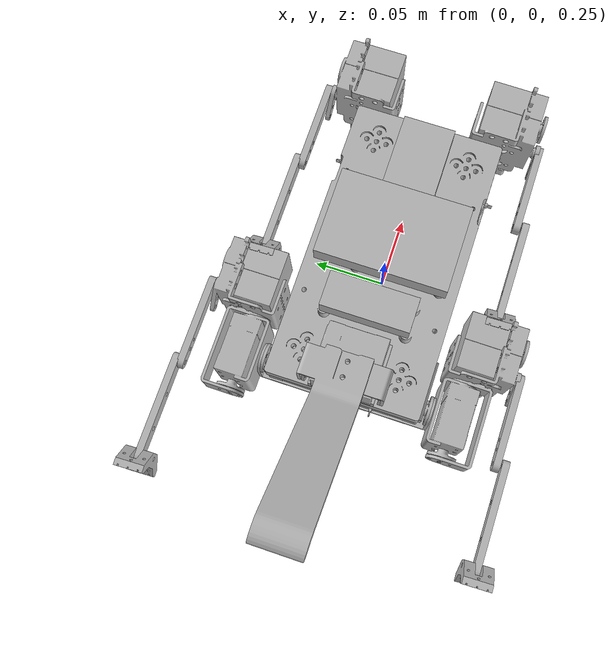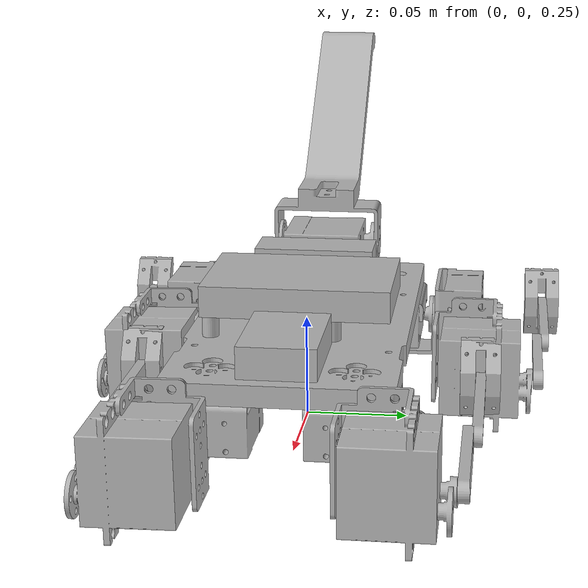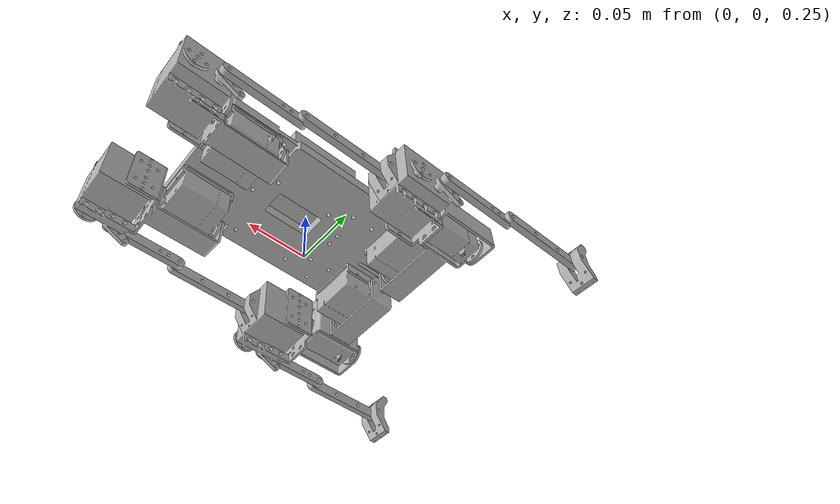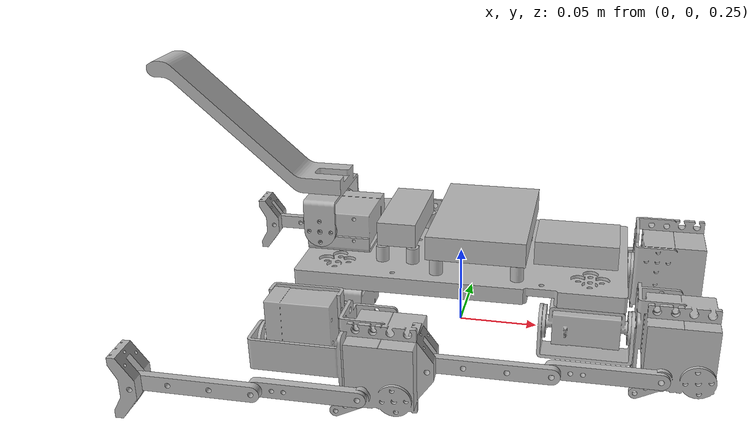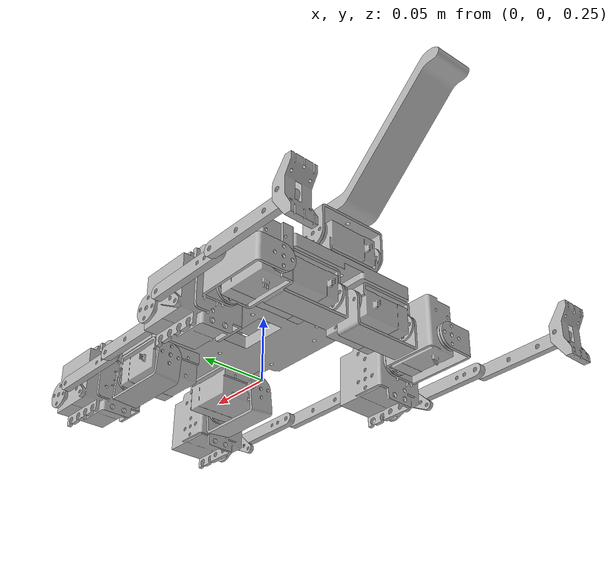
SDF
<sdf version='1.6'>
  <model name='stuart'>
    <link name='chassis'>
      <pose frame=''>0 0 0.2 0 -0 0</pose>
      <inertial>
        <pose frame=''>-0.002934 -0.0002 -0.001587 0 -0 0</pose>
        <mass>20.6436</mass>
        <inertia>
          <ixx>0.444602</ixx>
          <ixy>8.39044e-05</ixy>
          <ixz>0.0201047</ixz>
          <iyy>1.67587</iyy>
          <iyz>-4.00007</iyz>
          <izz>1.71585</izz>
        </inertia>
      </inertial>
      <collision name='chassis_collision'>
        <pose frame=''>0 0 0 0 -0 0</pose>
        <geometry>
          <box>
            <size>0.2 0.105 0.01</size>
          </box>
        </geometry>
      </collision>
      <collision name='chassis_fixed_joint_lump__motorFL1_collision_1'>
        <pose frame=''>0.0808 0.0388 -0.0203 0 -0 0</pose>
        <geometry>
          <box>
            <size>0.04 0.04 0.02</size>
          </box>
        </geometry>
      </collision>
      <collision name='chassis_fixed_joint_lump__motorFR1_collision_2'>
        <pose frame=''>0.0808 -0.0388 -0.0203 0 -0 0</pose>
        <geometry>
          <box>
            <size>0.04 0.04 0.02</size>
          </box>
        </geometry>
      </collision>
      <collision name='chassis_fixed_joint_lump__motorRL1_collision_3'>
        <pose frame=''>-0.0792 0.0308 -0.0203 0 -0 0</pose>
        <geometry>
          <box>
            <size>0.04 0.04 0.02</size>
          </box>
        </geometry>
      </collision>
      <collision name='chassis_fixed_joint_lump__motorRR1_collision_4'>
        <pose frame=''>-0.0792 -0.0308 -0.0203 0 -0 0</pose>
        <geometry>
          <box>
            <size>0.04 0.04 0.02</size>
          </box>
        </geometry>
      </collision>
      <collision name='chassis_fixed_joint_lump__tailmotor_collision_5'>
        <pose frame=''>-0.082 -0.0018 0.0156 0 -0 0</pose>
        <geometry>
          <box>
            <size>0.06 0.06 0.06</size>
          </box>
        </geometry>
      </collision>
      <collision name='chassis_fixed_joint_lump__imu_collision_6'>
        <pose frame=''>0.07335 0 0.0105 0 -0 0</pose>
        <geometry>
          <box>
            <size>0.051 0.036 0.015</size>
          </box>
        </geometry>
        <surface>
          <contact>
            <ode/>
          </contact>
          <friction>
            <ode/>
          </friction>
        </surface>
      </collision>
      <collision name='chassis_fixed_joint_lump__pi_collision_7'>
        <pose frame=''>0.015 0 0.0205 0 -0 0</pose>
        <geometry>
          <box>
            <size>0.06 0.09 0.015</size>
          </box>
        </geometry>
      </collision>
      <collision name='chassis_fixed_joint_lump__servodriver_collision_8'>
        <pose frame=''>-0.036 0 0.0205 0 -0 0</pose>
        <geometry>
          <box>
            <size>0.024 0.06 0.015</size>
          </box>
        </geometry>
      </collision>
      <visual name='chassis_visual'>
        <pose frame=''>0 0 0 0 -0 0</pose>
        <geometry>
          <mesh>
            <scale>0.001 0.001 0.001</scale>
            <uri>model://stuart_urdf/meshes/chassis2.stl</uri>
          </mesh>
        </geometry>
      </visual>
      <visual name='chassis_fixed_joint_lump__motorFL1_visual_1'>
        <pose frame=''>0.0808 0.0388 -0.0203 0 -0 0</pose>
        <geometry>
          <mesh>
            <scale>0.001 0.001 0.001</scale>
            <uri>model://stuart_urdf/meshes/frontleftrollmotor.stl</uri>
          </mesh>
        </geometry>
      </visual>
      <visual name='chassis_fixed_joint_lump__motorFR1_visual_2'>
        <pose frame=''>0.0808 -0.0388 -0.0203 0 -0 0</pose>
        <geometry>
          <mesh>
            <scale>0.001 0.001 0.001</scale>
            <uri>model://stuart_urdf/meshes/frontrightrollmotor.stl</uri>
          </mesh>
        </geometry>
      </visual>
      <visual name='chassis_fixed_joint_lump__motorRL1_visual_3'>
        <pose frame=''>-0.0792 0.0308 -0.0203 0 -0 0</pose>
        <geometry>
          <mesh>
            <scale>0.001 0.001 0.001</scale>
            <uri>model://stuart_urdf/meshes/rearlefthipmotor.stl</uri>
          </mesh>
        </geometry>
      </visual>
      <visual name='chassis_fixed_joint_lump__motorRR1_visual_4'>
        <pose frame=''>-0.0792 -0.0308 -0.0203 0 -0 0</pose>
        <geometry>
          <mesh>
            <scale>0.001 0.001 0.001</scale>
            <uri>model://stuart_urdf/meshes/rearrighthipmotor.stl</uri>
          </mesh>
        </geometry>
      </visual>
      <visual name='chassis_fixed_joint_lump__tailmotor_visual_5'>
        <pose frame=''>-0.082 -0.0018 0.0156 0 -0 0</pose>
        <geometry>
          <mesh>
            <scale>0.001 0.001 0.001</scale>
            <uri>model://stuart_urdf/meshes/tailmotor.stl</uri>
          </mesh>
        </geometry>
      </visual>
      <visual name='chassis_fixed_joint_lump__imu_visual_6'>
        <pose frame=''>0.07335 0 0.0105 0 -0 0</pose>
        <geometry>
          <box>
            <size>0.051 0.036 0.015</size>
          </box>
        </geometry>
        <material>
          <script>
            <uri>__default__</uri>
            <name>__default__</name>
          </script>
        </material>
      </visual>
      <visual name='chassis_fixed_joint_lump__pi_visual_7'>
        <pose frame=''>0.015 0 0.0205 0 -0 0</pose>
        <geometry>
          <box>
            <size>0.06 0.09 0.015</size>
          </box>
        </geometry>
      </visual>
      <visual name='chassis_fixed_joint_lump__servodriver_visual_8'>
        <pose frame=''>-0.036 0 0.0205 0 -0 0</pose>
        <geometry>
          <box>
            <size>0.024 0.06 0.015</size>
          </box>
        </geometry>
      </visual>
      <gravity>1</gravity>
      <velocity_decay/>
      <sensor name='imu' type='imu'>
        <always_on>1</always_on>
        <update_rate>500</update_rate>
        <visualize>1</visualize>
        <topic>__default_topic__</topic>
        <imu>
          <angular_velocity/>
          <linear_acceleration/>
        </imu>
        <pose frame=''>0.07335 0 0.0105 0 -0 0</pose>
      </sensor>
    </link>
    <link name='motorFL2'>
      <pose frame=''>0.1208 0.0422 0.1776 0 -0 0</pose>
      <inertial>
        <pose frame=''>0 0 0 0 -0 0</pose>
        <mass>20.145</mass>
        <inertia>
          <ixx>0.0733489</ixx>
          <ixy>0.00030338</ixy>
          <ixz>0.00191822</ixz>
          <iyy>0.250685</iyy>
          <iyz>-7.5402e-05</iyz>
          <izz>0.254469</izz>
        </inertia>
      </inertial>
      <collision name='motorFL2_collision'>
        <pose frame=''>0 0.0122 -0.0023 0 -0 0</pose>
        <geometry>
          <box>
            <size>0.07 0.04 0.04</size>
          </box>
        </geometry>
      </collision>
      <visual name='motorFL2_visual'>
        <pose frame=''>0 0.0122 -0.0023 0 -0 0</pose>
        <geometry>
          <mesh>
            <scale>0.001 0.001 0.001</scale>
            <uri>model://stuart_urdf/meshes/frontleftpitchmotor.stl</uri>
          </mesh>
        </geometry>
      </visual>
    </link>
    <joint name='motorFL1_motorFL2' type='revolute'>
      <child>motorFL2</child>
      <parent>chassis</parent>
      <axis>
        <xyz>1 0 0</xyz>
        <limit>
          <lower>-3.14</lower>
          <upper>3.14</upper>
          <effort>100</effort>
          <velocity>100</velocity>
        </limit>
        <dynamics>
          <damping>0</damping>
          <friction>0</friction>
          <spring_reference>0</spring_reference>
          <spring_stiffness>0</spring_stiffness>
        </dynamics>
        <use_parent_model_frame>1</use_parent_model_frame>
      </axis>
    </joint>
    <link name='FL_thigh'>
      <pose frame=''>0.1258 0.0812 0.1676 0 -0 0</pose>
      <inertial>
        <pose frame=''>0 0 0 0 -0 0</pose>
        <mass>20.0033</mass>
        <inertia>
          <ixx>0.0733489</ixx>
          <ixy>0.00030338</ixy>
          <ixz>0.00191822</ixz>
          <iyy>0.250685</iyy>
          <iyz>-7.5402e-05</iyz>
          <izz>0.254469</izz>
        </inertia>
      </inertial>
      <collision name='FL_thigh_collision'>
        <pose frame=''>-0.0365 0 0 0 -0 0</pose>
        <geometry>
          <box>
            <size>0.07 0.005 0.01</size>
          </box>
        </geometry>
      </collision>
      <visual name='FL_thigh_visual'>
        <pose frame=''>-0.0365 0 0 0 -0 0</pose>
        <geometry>
          <mesh>
            <scale>0.001 0.001 0.001</scale>
            <uri>model://stuart_urdf/meshes/thighlink.stl</uri>
          </mesh>
        </geometry>
      </visual>
    </link>
    <joint name='motorFL2_thigh' type='revolute'>
      <child>FL_thigh</child>
      <parent>motorFL2</parent>
      <axis>
        <xyz>0 1 0</xyz>
        <limit>
          <lower>-3.14</lower>
          <upper>3.14</upper>
          <effort>100</effort>
          <velocity>100</velocity>
        </limit>
        <dynamics>
          <damping>0</damping>
          <friction>0</friction>
          <spring_reference>0</spring_reference>
          <spring_stiffness>0</spring_stiffness>
        </dynamics>
        <use_parent_model_frame>1</use_parent_model_frame>
      </axis>
    </joint>
    <link name='FL_calf'>
      <pose frame=''>0.0658 0.0862 0.1676 0 -0 0</pose>
      <inertial>
        <pose frame=''>0 0 0 0 -0 0</pose>
        <mass>20.0038</mass>
        <inertia>
          <ixx>0.0733489</ixx>
          <ixy>0.00030338</ixy>
          <ixz>0.00191822</ixz>
          <iyy>0.250685</iyy>
          <iyz>-7.5402e-05</iyz>
          <izz>0.254469</izz>
        </inertia>
      </inertial>
      <collision name='FL_calf_collision'>
        <pose frame=''>-0.036 0 0 0 -0 0</pose>
        <geometry>
          <box>
            <size>0.08 0.005 0.01</size>
          </box>
        </geometry>
      </collision>
      <visual name='FL_calf_visual'>
        <pose frame=''>-0.036 0 0 0 -0 0</pose>
        <geometry>
          <mesh>
            <scale>0.001 0.001 0.001</scale>
            <uri>model://stuart_urdf/meshes/calflink.stl</uri>
          </mesh>
        </geometry>
      </visual>
    </link>
    <joint name='FLthigh_calf' type='revolute'>
      <child>FL_calf</child>
      <parent>FL_thigh</parent>
      <axis>
        <xyz>0 1 0</xyz>
        <limit>
          <lower>-3.14</lower>
          <upper>3.14</upper>
          <effort>100</effort>
          <velocity>100</velocity>
        </limit>
        <dynamics>
          <damping>0</damping>
          <friction>0</friction>
          <spring_reference>0</spring_reference>
          <spring_stiffness>0</spring_stiffness>
        </dynamics>
        <use_parent_model_frame>1</use_parent_model_frame>
      </axis>
    </joint>
    <link name='FL_foot'>
      <pose frame=''>-0.0044 0.0862 0.1676 0 -0 0</pose>
      <inertial>
        <pose frame=''>0 0 0 0 -0 0</pose>
        <mass>20.0057</mass>
        <inertia>
          <ixx>0.0733489</ixx>
          <ixy>0.00030338</ixy>
          <ixz>0.00191822</ixz>
          <iyy>0.250685</iyy>
          <iyz>-7.5402e-05</iyz>
          <izz>0.254469</izz>
        </inertia>
      </inertial>
      <collision name='FL_foot_collision'>
        <pose frame=''>-0.0058 0 0 0 -0 0</pose>
        <geometry>
          <box>
            <size>0.015 0.02 0.04</size>
          </box>
        </geometry>
      </collision>
      <visual name='FL_foot_visual'>
        <pose frame=''>-0.0058 0 0 0 1.57 0</pose>
        <geometry>
          <mesh>
            <scale>0.001 0.001 0.001</scale>
            <uri>model://stuart_urdf/meshes/foot.stl</uri>
          </mesh>
        </geometry>
      </visual>
    </link>
    <joint name='FLcalf_foot' type='revolute'>
      <child>FL_foot</child>
      <parent>FL_calf</parent>
      <axis>
        <xyz>0 1 0</xyz>
        <limit>
          <lower>-1e+16</lower>
          <upper>1e+16</upper>
        </limit>
        <dynamics>
          <damping>0</damping>
          <friction>0</friction>
          <spring_reference>0</spring_reference>
          <spring_stiffness>0</spring_stiffness>
        </dynamics>
        <use_parent_model_frame>1</use_parent_model_frame>
      </axis>
    </joint>
    <link name='motorFR2'>
      <pose frame=''>0.1208 -0.0422 0.1776 0 -0 0</pose>
      <inertial>
        <pose frame=''>0 0 0 0 -0 0</pose>
        <mass>20.145</mass>
        <inertia>
          <ixx>0.0733489</ixx>
          <ixy>0.00030338</ixy>
          <ixz>0.00191822</ixz>
          <iyy>0.250685</iyy>
          <iyz>-7.5402e-05</iyz>
          <izz>0.254469</izz>
        </inertia>
      </inertial>
      <collision name='motorFR2_collision'>
        <pose frame=''>0 -0.0122 -0.0023 0 -0 0</pose>
        <geometry>
          <box>
            <size>0.07 0.04 0.04</size>
          </box>
        </geometry>
      </collision>
      <visual name='motorFR2_visual'>
        <pose frame=''>0 -0.0122 -0.0023 0 -0 0</pose>
        <geometry>
          <mesh>
            <scale>0.001 0.001 0.001</scale>
            <uri>model://stuart_urdf/meshes/frontrightpitchmotor.stl</uri>
          </mesh>
        </geometry>
      </visual>
    </link>
    <joint name='motorFR1_motorFR2' type='revolute'>
      <child>motorFR2</child>
      <parent>chassis</parent>
      <axis>
        <xyz>1 0 0</xyz>
        <limit>
          <lower>-3.14</lower>
          <upper>3.14</upper>
          <effort>100</effort>
          <velocity>100</velocity>
        </limit>
        <dynamics>
          <damping>0</damping>
          <friction>0</friction>
          <spring_reference>0</spring_reference>
          <spring_stiffness>0</spring_stiffness>
        </dynamics>
        <use_parent_model_frame>1</use_parent_model_frame>
      </axis>
    </joint>
    <link name='FR_thigh'>
      <pose frame=''>0.1258 -0.0812 0.1676 0 -0 0</pose>
      <inertial>
        <pose frame=''>0 0 0 0 -0 0</pose>
        <mass>20.0033</mass>
        <inertia>
          <ixx>0.0733489</ixx>
          <ixy>0.00030338</ixy>
          <ixz>0.00191822</ixz>
          <iyy>0.250685</iyy>
          <iyz>-7.5402e-05</iyz>
          <izz>0.254469</izz>
        </inertia>
      </inertial>
      <collision name='FR_thigh_collision'>
        <pose frame=''>-0.0365 0 0 0 -0 0</pose>
        <geometry>
          <box>
            <size>0.07 0.005 0.01</size>
          </box>
        </geometry>
      </collision>
      <visual name='FR_thigh_visual'>
        <pose frame=''>-0.0365 0 0 0 -0 0</pose>
        <geometry>
          <mesh>
            <scale>0.001 0.001 0.001</scale>
            <uri>model://stuart_urdf/meshes/thighlink.stl</uri>
          </mesh>
        </geometry>
      </visual>
    </link>
    <joint name='motorFR2_thigh' type='revolute'>
      <child>FR_thigh</child>
      <parent>motorFR2</parent>
      <axis>
        <xyz>0 1 0</xyz>
        <limit>
          <lower>-3.14</lower>
          <upper>3.14</upper>
          <effort>100</effort>
          <velocity>100</velocity>
        </limit>
        <dynamics>
          <damping>0</damping>
          <friction>0</friction>
          <spring_reference>0</spring_reference>
          <spring_stiffness>0</spring_stiffness>
        </dynamics>
        <use_parent_model_frame>1</use_parent_model_frame>
      </axis>
    </joint>
    <link name='FR_calf'>
      <pose frame=''>0.0658 -0.0862 0.1676 0 -0 0</pose>
      <inertial>
        <pose frame=''>0 0 0 0 -0 0</pose>
        <mass>20.0038</mass>
        <inertia>
          <ixx>0.0733489</ixx>
          <ixy>0.00030338</ixy>
          <ixz>0.00191822</ixz>
          <iyy>0.250685</iyy>
          <iyz>-7.5402e-05</iyz>
          <izz>0.254469</izz>
        </inertia>
      </inertial>
      <collision name='FR_calf_collision'>
        <pose frame=''>-0.036 0 0 0 -0 0</pose>
        <geometry>
          <box>
            <size>0.08 0.005 0.01</size>
          </box>
        </geometry>
      </collision>
      <visual name='FR_calf_visual'>
        <pose frame=''>-0.036 0 0 0 -0 0</pose>
        <geometry>
          <mesh>
            <scale>0.001 0.001 0.001</scale>
            <uri>model://stuart_urdf/meshes/calflink.stl</uri>
          </mesh>
        </geometry>
      </visual>
    </link>
    <joint name='FRthigh_calf' type='revolute'>
      <child>FR_calf</child>
      <parent>FR_thigh</parent>
      <axis>
        <xyz>0 1 0</xyz>
        <limit>
          <lower>-3.14</lower>
          <upper>3.14</upper>
          <effort>100</effort>
          <velocity>100</velocity>
        </limit>
        <dynamics>
          <damping>0</damping>
          <friction>0</friction>
          <spring_reference>0</spring_reference>
          <spring_stiffness>0</spring_stiffness>
        </dynamics>
        <use_parent_model_frame>1</use_parent_model_frame>
      </axis>
    </joint>
    <link name='FR_foot'>
      <pose frame=''>-0.0044 -0.0862 0.1676 0 -0 0</pose>
      <inertial>
        <pose frame=''>0 0 0 0 -0 0</pose>
        <mass>20.0057</mass>
        <inertia>
          <ixx>0.0733489</ixx>
          <ixy>0.00030338</ixy>
          <ixz>0.00191822</ixz>
          <iyy>0.250685</iyy>
          <iyz>-7.5402e-05</iyz>
          <izz>0.254469</izz>
        </inertia>
      </inertial>
      <collision name='FR_foot_collision'>
        <pose frame=''>-0.0058 0 0 0 -0 0</pose>
        <geometry>
          <box>
            <size>0.015 0.02 0.04</size>
          </box>
        </geometry>
      </collision>
      <visual name='FR_foot_visual'>
        <pose frame=''>-0.0058 0 0 0 1.57 0</pose>
        <geometry>
          <mesh>
            <scale>0.001 0.001 0.001</scale>
            <uri>model://stuart_urdf/meshes/foot.stl</uri>
          </mesh>
        </geometry>
      </visual>
    </link>
    <joint name='FRcalf_foot' type='revolute'>
      <child>FR_foot</child>
      <parent>FR_calf</parent>
      <axis>
        <xyz>0 1 0</xyz>
        <limit>
          <lower>-1e+16</lower>
          <upper>1e+16</upper>
        </limit>
        <dynamics>
          <damping>0</damping>
          <friction>0</friction>
          <spring_reference>0</spring_reference>
          <spring_stiffness>0</spring_stiffness>
        </dynamics>
        <use_parent_model_frame>1</use_parent_model_frame>
      </axis>
    </joint>
    <link name='motorRL2'>
      <pose frame=''>-0.0827 0.0658 0.1777 0 -0 0</pose>
      <inertial>
        <pose frame=''>0 0 0 0 -0 0</pose>
        <mass>20.083</mass>
        <inertia>
          <ixx>0.0733489</ixx>
          <ixy>0.00030338</ixy>
          <ixz>0.00191822</ixz>
          <iyy>0.250685</iyy>
          <iyz>-7.5402e-05</iyz>
          <izz>0.254469</izz>
        </inertia>
      </inertial>
      <collision name='motorRL2_collision'>
        <pose frame=''>-0.0015 0 -0.006 0 -0 0</pose>
        <geometry>
          <box>
            <size>0.04 0.04 0.04</size>
          </box>
        </geometry>
      </collision>
      <visual name='motorRL2_visual'>
        <pose frame=''>-0.0015 0 -0.006 0 -0 0</pose>
        <geometry>
          <mesh>
            <scale>0.001 0.001 0.001</scale>
            <uri>model://stuart_urdf/meshes/rearleftrollmotor.stl</uri>
          </mesh>
        </geometry>
      </visual>
    </link>
    <joint name='motorRL1_motorRL2' type='revolute'>
      <child>motorRL2</child>
      <parent>chassis</parent>
      <axis>
        <xyz>0 1 0</xyz>
        <limit>
          <lower>-3.14</lower>
          <upper>3.14</upper>
          <effort>100</effort>
          <velocity>100</velocity>
        </limit>
        <dynamics>
          <damping>0</damping>
          <friction>0</friction>
          <spring_reference>0</spring_reference>
          <spring_stiffness>0</spring_stiffness>
        </dynamics>
        <use_parent_model_frame>1</use_parent_model_frame>
      </axis>
    </joint>
    <link name='motorRL3'>
      <pose frame=''>-0.0447 0.0753 0.16715 0 -0 0</pose>
      <inertial>
        <pose frame=''>0 0 0 0 -0 0</pose>
        <mass>20.145</mass>
        <inertia>
          <ixx>0.0733489</ixx>
          <ixy>0.00030338</ixy>
          <ixz>0.00191822</ixz>
          <iyy>0.250685</iyy>
          <iyz>-7.5402e-05</iyz>
          <izz>0.254469</izz>
        </inertia>
      </inertial>
      <collision name='motorRL3_collision'>
        <pose frame=''>0 0.012 -0.0025 0 -0 0</pose>
        <geometry>
          <box>
            <size>0.07 0.04 0.04</size>
          </box>
        </geometry>
      </collision>
      <visual name='motorRL3_visual'>
        <pose frame=''>0 0.012 -0.0025 0 -0 0</pose>
        <geometry>
          <mesh>
            <scale>0.001 0.001 0.001</scale>
            <uri>model://stuart_urdf/meshes/rearleftpitchmotor.stl</uri>
          </mesh>
        </geometry>
      </visual>
    </link>
    <joint name='motorRL2_motorRL3' type='revolute'>
      <child>motorRL3</child>
      <parent>motorRL2</parent>
      <axis>
        <xyz>1 0 0</xyz>
        <limit>
          <lower>-3.14</lower>
          <upper>3.14</upper>
          <effort>100</effort>
          <velocity>100</velocity>
        </limit>
        <dynamics>
          <damping>0</damping>
          <friction>0</friction>
          <spring_reference>0</spring_reference>
          <spring_stiffness>0</spring_stiffness>
        </dynamics>
        <use_parent_model_frame>1</use_parent_model_frame>
      </axis>
    </joint>
    <link name='RL_thigh'>
      <pose frame=''>-0.0397 0.1143 0.15715 0 -0 0</pose>
      <inertial>
        <pose frame=''>0 0 0 0 -0 0</pose>
        <mass>20.0033</mass>
        <inertia>
          <ixx>0.0733489</ixx>
          <ixy>0.00030338</ixy>
          <ixz>0.00191822</ixz>
          <iyy>0.250685</iyy>
          <iyz>-7.5402e-05</iyz>
          <izz>0.254469</izz>
        </inertia>
      </inertial>
      <collision name='RL_thigh_collision'>
        <pose frame=''>-0.0365 0 0 0 -0 0</pose>
        <geometry>
          <box>
            <size>0.07 0.005 0.01</size>
          </box>
        </geometry>
      </collision>
      <visual name='RL_thigh_visual'>
        <pose frame=''>-0.0365 0 0 0 -0 0</pose>
        <geometry>
          <mesh>
            <scale>0.001 0.001 0.001</scale>
            <uri>model://stuart_urdf/meshes/thighlink.stl</uri>
          </mesh>
        </geometry>
      </visual>
    </link>
    <joint name='motorRL3_thigh' type='revolute'>
      <child>RL_thigh</child>
      <parent>motorRL3</parent>
      <axis>
        <xyz>0 1 0</xyz>
        <limit>
          <lower>-3.14</lower>
          <upper>3.14</upper>
          <effort>100</effort>
          <velocity>100</velocity>
        </limit>
        <dynamics>
          <damping>0</damping>
          <friction>0</friction>
          <spring_reference>0</spring_reference>
          <spring_stiffness>0</spring_stiffness>
        </dynamics>
        <use_parent_model_frame>1</use_parent_model_frame>
      </axis>
    </joint>
    <link name='RL_calf'>
      <pose frame=''>-0.0997 0.1193 0.15715 0 -0 0</pose>
      <inertial>
        <pose frame=''>0 0 0 0 -0 0</pose>
        <mass>20.0038</mass>
        <inertia>
          <ixx>0.0733489</ixx>
          <ixy>0.00030338</ixy>
          <ixz>0.00191822</ixz>
          <iyy>0.250685</iyy>
          <iyz>-7.5402e-05</iyz>
          <izz>0.254469</izz>
        </inertia>
      </inertial>
      <collision name='RL_calf_collision'>
        <pose frame=''>-0.036 0 0 0 -0 0</pose>
        <geometry>
          <box>
            <size>0.08 0.005 0.01</size>
          </box>
        </geometry>
      </collision>
      <visual name='RL_calf_visual'>
        <pose frame=''>-0.036 0 0 0 -0 0</pose>
        <geometry>
          <mesh>
            <scale>0.001 0.001 0.001</scale>
            <uri>model://stuart_urdf/meshes/calflink.stl</uri>
          </mesh>
        </geometry>
      </visual>
    </link>
    <joint name='RLthigh_calf' type='revolute'>
      <child>RL_calf</child>
      <parent>RL_thigh</parent>
      <axis>
        <xyz>0 1 0</xyz>
        <limit>
          <lower>-3.14</lower>
          <upper>3.14</upper>
          <effort>100</effort>
          <velocity>100</velocity>
        </limit>
        <dynamics>
          <damping>0</damping>
          <friction>0</friction>
          <spring_reference>0</spring_reference>
          <spring_stiffness>0</spring_stiffness>
        </dynamics>
        <use_parent_model_frame>1</use_parent_model_frame>
      </axis>
    </joint>
    <link name='RL_foot'>
      <pose frame=''>-0.1699 0.1193 0.15715 0 -0 0</pose>
      <inertial>
        <pose frame=''>0 0 0 0 -0 0</pose>
        <mass>20.0057</mass>
        <inertia>
          <ixx>0.0733489</ixx>
          <ixy>0.00030338</ixy>
          <ixz>0.00191822</ixz>
          <iyy>0.250685</iyy>
          <iyz>-7.5402e-05</iyz>
          <izz>0.254469</izz>
        </inertia>
      </inertial>
      <collision name='RL_foot_collision'>
        <pose frame=''>-0.0058 0 0 0 -0 0</pose>
        <geometry>
          <box>
            <size>0.015 0.02 0.04</size>
          </box>
        </geometry>
      </collision>
      <visual name='RL_foot_visual'>
        <pose frame=''>-0.0058 0 0 0 1.57 0</pose>
        <geometry>
          <mesh>
            <scale>0.001 0.001 0.001</scale>
            <uri>model://stuart_urdf/meshes/foot.stl</uri>
          </mesh>
        </geometry>
      </visual>
    </link>
    <joint name='RLcalf_foot' type='revolute'>
      <child>RL_foot</child>
      <parent>RL_calf</parent>
      <axis>
        <xyz>0 1 0</xyz>
        <limit>
          <lower>-1e+16</lower>
          <upper>1e+16</upper>
        </limit>
        <dynamics>
          <damping>0</damping>
          <friction>0</friction>
          <spring_reference>0</spring_reference>
          <spring_stiffness>0</spring_stiffness>
        </dynamics>
        <use_parent_model_frame>1</use_parent_model_frame>
      </axis>
    </joint>
    <link name='motorRR2'>
      <pose frame=''>-0.0827 -0.0658 0.1777 0 -0 0</pose>
      <inertial>
        <pose frame=''>0 0 0 0 -0 0</pose>
        <mass>20.083</mass>
        <inertia>
          <ixx>0.0733489</ixx>
          <ixy>0.00030338</ixy>
          <ixz>0.00191822</ixz>
          <iyy>0.250685</iyy>
          <iyz>-7.5402e-05</iyz>
          <izz>0.254469</izz>
        </inertia>
      </inertial>
      <collision name='motorRR2_collision'>
        <pose frame=''>-0.0015 0 -0.006 0 -0 0</pose>
        <geometry>
          <box>
            <size>0.04 0.04 0.04</size>
          </box>
        </geometry>
      </collision>
      <visual name='motorRR2_visual'>
        <pose frame=''>-0.0015 0 -0.006 0 -0 0</pose>
        <geometry>
          <mesh>
            <scale>0.001 0.001 0.001</scale>
            <uri>model://stuart_urdf/meshes/rearrightrollmotor.stl</uri>
          </mesh>
        </geometry>
      </visual>
    </link>
    <joint name='motorRR1_motorRR2' type='revolute'>
      <child>motorRR2</child>
      <parent>chassis</parent>
      <axis>
        <xyz>0 1 0</xyz>
        <limit>
          <lower>-3.14</lower>
          <upper>3.14</upper>
          <effort>100</effort>
          <velocity>100</velocity>
        </limit>
        <dynamics>
          <damping>0</damping>
          <friction>0</friction>
          <spring_reference>0</spring_reference>
          <spring_stiffness>0</spring_stiffness>
        </dynamics>
        <use_parent_model_frame>1</use_parent_model_frame>
      </axis>
    </joint>
    <link name='motorRR3'>
      <pose frame=''>-0.0447 -0.0753 0.16715 0 -0 0</pose>
      <inertial>
        <pose frame=''>0 0 0 0 -0 0</pose>
        <mass>20.145</mass>
        <inertia>
          <ixx>0.0733489</ixx>
          <ixy>0.00030338</ixy>
          <ixz>0.00191822</ixz>
          <iyy>0.250685</iyy>
          <iyz>-7.5402e-05</iyz>
          <izz>0.254469</izz>
        </inertia>
      </inertial>
      <collision name='motorRR3_collision'>
        <pose frame=''>0 -0.012 -0.0025 0 -0 0</pose>
        <geometry>
          <box>
            <size>0.07 0.04 0.04</size>
          </box>
        </geometry>
      </collision>
      <visual name='motorRR3_visual'>
        <pose frame=''>0 -0.012 -0.0025 0 -0 0</pose>
        <geometry>
          <mesh>
            <scale>0.001 0.001 0.001</scale>
            <uri>model://stuart_urdf/meshes/rearrightpitchmotor.stl</uri>
          </mesh>
        </geometry>
      </visual>
    </link>
    <joint name='motorRR2_motorRR3' type='revolute'>
      <child>motorRR3</child>
      <parent>motorRR2</parent>
      <axis>
        <xyz>1 0 0</xyz>
        <limit>
          <lower>-3.14</lower>
          <upper>3.14</upper>
          <effort>100</effort>
          <velocity>100</velocity>
        </limit>
        <dynamics>
          <damping>0</damping>
          <friction>0</friction>
          <spring_reference>0</spring_reference>
          <spring_stiffness>0</spring_stiffness>
        </dynamics>
        <use_parent_model_frame>1</use_parent_model_frame>
      </axis>
    </joint>
    <link name='RR_thigh'>
      <pose frame=''>-0.0397 -0.1143 0.15715 0 -0 0</pose>
      <inertial>
        <pose frame=''>0 0 0 0 -0 0</pose>
        <mass>20.0033</mass>
        <inertia>
          <ixx>0.0733489</ixx>
          <ixy>0.00030338</ixy>
          <ixz>0.00191822</ixz>
          <iyy>0.250685</iyy>
          <iyz>-7.5402e-05</iyz>
          <izz>0.254469</izz>
        </inertia>
      </inertial>
      <collision name='RR_thigh_collision'>
        <pose frame=''>-0.0365 0 0 0 -0 0</pose>
        <geometry>
          <box>
            <size>0.07 0.005 0.01</size>
          </box>
        </geometry>
      </collision>
      <visual name='RR_thigh_visual'>
        <pose frame=''>-0.0365 0 0 0 -0 0</pose>
        <geometry>
          <mesh>
            <scale>0.001 0.001 0.001</scale>
            <uri>model://stuart_urdf/meshes/thighlink.stl</uri>
          </mesh>
        </geometry>
      </visual>
    </link>
    <joint name='motorRR3_thigh' type='revolute'>
      <child>RR_thigh</child>
      <parent>motorRR3</parent>
      <axis>
        <xyz>0 1 0</xyz>
        <limit>
          <lower>-3.14</lower>
          <upper>3.14</upper>
          <effort>100</effort>
          <velocity>100</velocity>
        </limit>
        <dynamics>
          <damping>0</damping>
          <friction>0</friction>
          <spring_reference>0</spring_reference>
          <spring_stiffness>0</spring_stiffness>
        </dynamics>
        <use_parent_model_frame>1</use_parent_model_frame>
      </axis>
    </joint>
    <link name='RR_calf'>
      <pose frame=''>-0.0997 -0.1193 0.15715 0 -0 0</pose>
      <inertial>
        <pose frame=''>0 0 0 0 -0 0</pose>
        <mass>20.0038</mass>
        <inertia>
          <ixx>0.0733489</ixx>
          <ixy>0.00030338</ixy>
          <ixz>0.00191822</ixz>
          <iyy>0.250685</iyy>
          <iyz>-7.5402e-05</iyz>
          <izz>0.254469</izz>
        </inertia>
      </inertial>
      <collision name='RR_calf_collision'>
        <pose frame=''>-0.036 0 0 0 -0 0</pose>
        <geometry>
          <box>
            <size>0.08 0.005 0.01</size>
          </box>
        </geometry>
      </collision>
      <visual name='RR_calf_visual'>
        <pose frame=''>-0.036 0 0 0 -0 0</pose>
        <geometry>
          <mesh>
            <scale>0.001 0.001 0.001</scale>
            <uri>model://stuart_urdf/meshes/calflink.stl</uri>
          </mesh>
        </geometry>
      </visual>
    </link>
    <joint name='RRthigh_calf' type='revolute'>
      <child>RR_calf</child>
      <parent>RR_thigh</parent>
      <axis>
        <xyz>0 1 0</xyz>
        <limit>
          <lower>-3.14</lower>
          <upper>3.14</upper>
          <effort>100</effort>
          <velocity>100</velocity>
        </limit>
        <dynamics>
          <damping>0</damping>
          <friction>0</friction>
          <spring_reference>0</spring_reference>
          <spring_stiffness>0</spring_stiffness>
        </dynamics>
        <use_parent_model_frame>1</use_parent_model_frame>
      </axis>
    </joint>
    <link name='RR_foot'>
      <pose frame=''>-0.1699 -0.1193 0.15715 0 -0 0</pose>
      <inertial>
        <pose frame=''>0 0 0 0 -0 0</pose>
        <mass>20.0057</mass>
        <inertia>
          <ixx>0.0733489</ixx>
          <ixy>0.00030338</ixy>
          <ixz>0.00191822</ixz>
          <iyy>0.250685</iyy>
          <iyz>-7.5402e-05</iyz>
          <izz>0.254469</izz>
        </inertia>
      </inertial>
      <collision name='RR_foot_collision'>
        <pose frame=''>-0.0058 0 0 0 -0 0</pose>
        <geometry>
          <box>
            <size>0.015 0.02 0.04</size>
          </box>
        </geometry>
      </collision>
      <visual name='RR_foot_visual'>
        <pose frame=''>-0.0058 0 0 0 1.57 0</pose>
        <geometry>
          <mesh>
            <scale>0.001 0.001 0.001</scale>
            <uri>model://stuart_urdf/meshes/foot.stl</uri>
          </mesh>
        </geometry>
      </visual>
    </link>
    <joint name='RRcalf_foot' type='revolute'>
      <child>RR_foot</child>
      <parent>RR_calf</parent>
      <axis>
        <xyz>0 1 0</xyz>
        <limit>
          <lower>-1e+16</lower>
          <upper>1e+16</upper>
        </limit>
        <dynamics>
          <damping>0</damping>
          <friction>0</friction>
          <spring_reference>0</spring_reference>
          <spring_stiffness>0</spring_stiffness>
        </dynamics>
        <use_parent_model_frame>1</use_parent_model_frame>
      </axis>
    </joint>
    <link name='tail'>
      <pose frame=''>-0.0853 0.0002 0.2179 0 -0 0</pose>
      <inertial>
        <pose frame=''>0 0 0 0 -0 0</pose>
        <mass>20.05</mass>
        <inertia>
          <ixx>0.0733489</ixx>
          <ixy>0.00030338</ixy>
          <ixz>0.00191822</ixz>
          <iyy>0.250685</iyy>
          <iyz>-7.5402e-05</iyz>
          <izz>0.254469</izz>
        </inertia>
      </inertial>
      <collision name='tail_collision'>
        <pose frame=''>-0.0807 0 0.0865 0 0.55 0</pose>
        <geometry>
          <box>
            <size>0.06 0.04 0.02</size>
          </box>
        </geometry>
      </collision>
      <visual name='tail_visual'>
        <pose frame=''>-0.0057 0 0.0115 0 -0 0</pose>
        <geometry>
          <mesh>
            <scale>0.001 0.001 0.001</scale>
            <uri>model://stuart_urdf/meshes/taillink.stl</uri>
          </mesh>
        </geometry>
      </visual>
    </link>
    <joint name='tailmotor_tail' type='revolute'>
      <child>tail</child>
      <parent>chassis</parent>
      <axis>
        <xyz>0 1 0</xyz>
        <limit>
          <lower>-3.14</lower>
          <upper>3.14</upper>
          <effort>100</effort>
          <velocity>100</velocity>
        </limit>
        <dynamics>
          <damping>0</damping>
          <friction>0</friction>
          <spring_reference>0</spring_reference>
          <spring_stiffness>0</spring_stiffness>
        </dynamics>
        <use_parent_model_frame>1</use_parent_model_frame>
      </axis>
    </joint>
    <static>0</static>
    <plugin name='xbot_plugin_handler' filename='libGazeboXBotPlugin.so'>
      <path_to_config_file>configs/stuart/configs/stuart.yaml</path_to_config_file>
    </plugin>
    <pose frame=''>0 0 0.1 0 -0 0</pose>
  </model>
</sdf>
